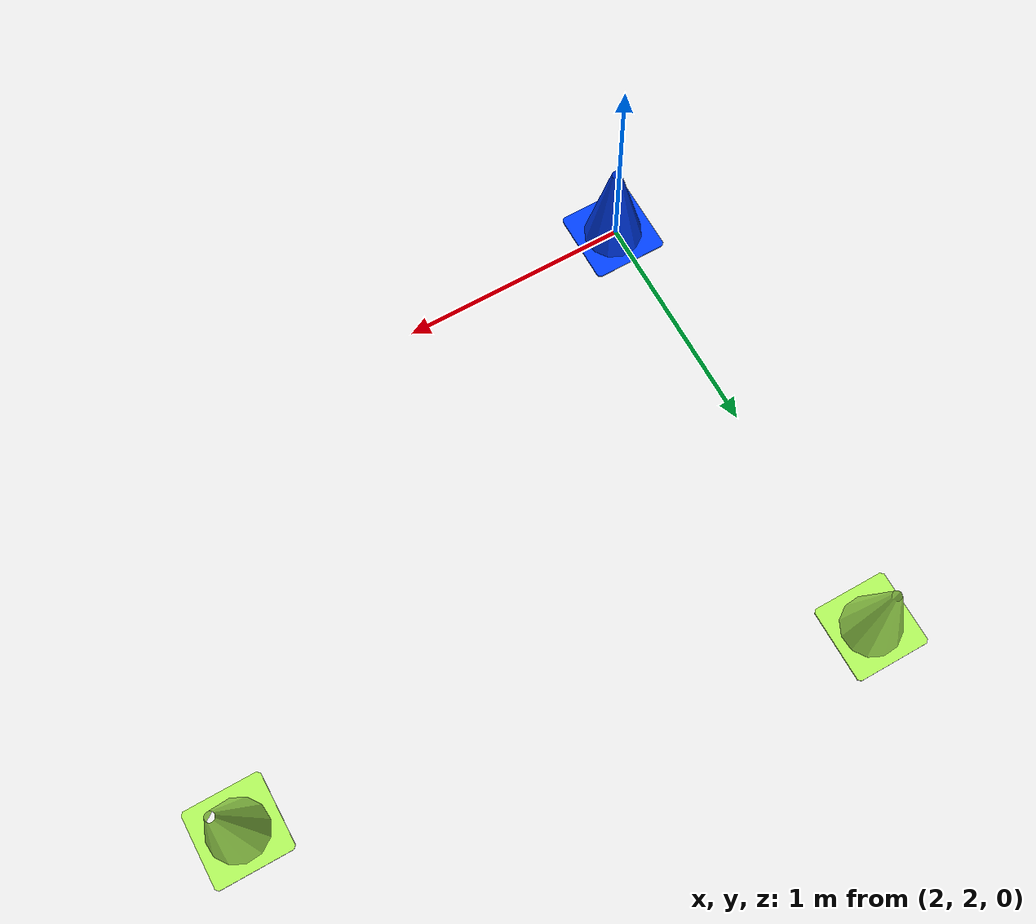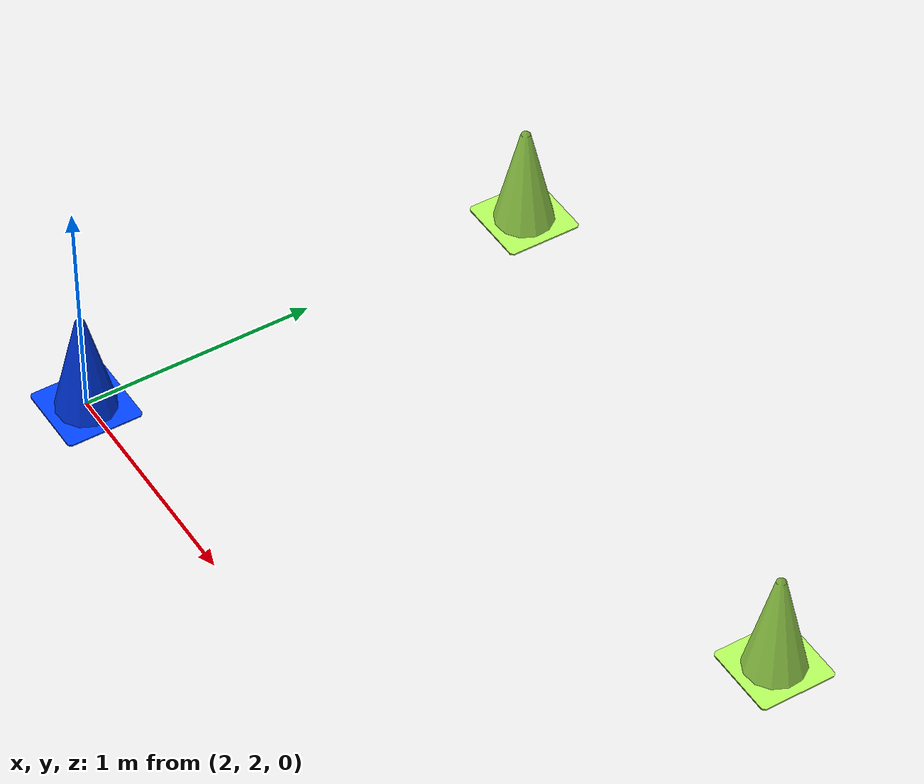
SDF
<sdf version="1.7">
 <world name="obstacles.world">
  <model name="neon_cone_6">
   <link name="link">
    <inertial>
     <pose>0 0.1 0 0 -0 0</pose>
     <mass>1</mass>
     <inertia><ixx>0.1</ixx><iyy>0.1</iyy><izz>0</izz><ixy>0</ixy><ixz>0</ixz><iyz>0</iyz></inertia>
    </inertial>
    <pose>-0.104311 -0.990632 5.9e-05 0 -0 0</pose>
    <visual name="visual">
     <geometry><mesh><scale>1 1 1</scale><uri>file://model.dae</uri></mesh></geometry>
     <material>
      <shader type="pixel"><normal_map>__default__</normal_map></shader>
      <script><name>ModelPreview_1::link::visual_MATERIAL_</name><uri>__default__</uri></script>
      <ambient>0.682 0.953 0.349 0</ambient>
      <diffuse>0.682 0.953 0.349 1</diffuse>
      <specular>0 0 0 1</specular>
      <emissive>0 0 0 1</emissive>
     </material>
    </visual>
    <collision name="collision">
     <geometry>
      <mesh>
       <uri>/home/josh/robot_ws/src/open-source-autonomous-vehicle-controller/car_ros/worlds/model.dae</uri>
       <scale>1 1 1</scale>
      </mesh>
     </geometry>
     <surface>
      <friction>
       <ode><mu>1</mu><mu2>1</mu2><fdir1>0 0 0</fdir1><slip1>0</slip1><slip2>0</slip2></ode>
       <torsional>
        <coefficient>1</coefficient>
        <patch_radius>0</patch_radius>
        <surface_radius>0</surface_radius>
        <use_patch_radius>1</use_patch_radius>
        <ode><slip>0</slip></ode>
       </torsional>
      </friction>
      <bounce><restitution_coefficient>0</restitution_coefficient><threshold>1e+06</threshold></bounce>
      <contact>
       <collide_without_contact>0</collide_without_contact>
       <collide_without_contact_bitmask>1</collide_without_contact_bitmask>
       <collide_bitmask>1</collide_bitmask>
       <ode>
        <soft_cfm>0</soft_cfm>
        <soft_erp>0.2</soft_erp>
        <kp>1e+13</kp>
        <kd>1</kd>
        <max_vel>0.01</max_vel>
        <min_depth>0</min_depth>
       </ode>
       <bullet>
        <split_impulse>1</split_impulse>
        <split_impulse_penetration_threshold>-0.01</split_impulse_penetration_threshold>
        <soft_cfm>0</soft_cfm>
        <soft_erp>0.2</soft_erp>
        <kp>1e+13</kp>
        <kd>1</kd>
       </bullet>
      </contact>
     </surface>
    </collision>
    <static>1</static>
   </link>
   <static>0</static>
   <pose>1.95173 4.8426 0.000192 0 -0.002415 0</pose>
  </model>
  <model name="neon_cone_7">
   <link name="link">
    <inertial>
     <pose>0 0.1 0 0 -0 0</pose>
     <mass>1</mass>
     <inertia><ixx>0.1</ixx><iyy>0.1</iyy><izz>0</izz><ixy>0</ixy><ixz>0</ixz><iyz>0</iyz></inertia>
    </inertial>
    <pose>-0.104311 -0.990632 5.9e-05 0 -0 0</pose>
    <visual name="visual">
     <geometry><mesh><scale>1 1 1</scale><uri>file://model.dae</uri></mesh></geometry>
     <material>
      <shader type="pixel"><normal_map>__default__</normal_map></shader>
      <script><name>ModelPreview_1::link::visual_MATERIAL_</name><uri>__default__</uri></script>
      <ambient>0.682 0.953 0.349 0</ambient>
      <diffuse>0.682 0.953 0.349 1</diffuse>
      <specular>0 0 0 1</specular>
      <emissive>0 0 0 1</emissive>
     </material>
    </visual>
    <collision name="collision">
     <geometry>
      <mesh>
       <uri>/home/josh/robot_ws/src/open-source-autonomous-vehicle-controller/car_ros/worlds/model.dae</uri>
       <scale>1 1 1</scale>
      </mesh>
     </geometry>
     <surface>
      <friction>
       <ode><mu>1</mu><mu2>1</mu2><fdir1>0 0 0</fdir1><slip1>0</slip1><slip2>0</slip2></ode>
       <torsional>
        <coefficient>1</coefficient>
        <patch_radius>0</patch_radius>
        <surface_radius>0</surface_radius>
        <use_patch_radius>1</use_patch_radius>
        <ode><slip>0</slip></ode>
       </torsional>
      </friction>
      <bounce><restitution_coefficient>0</restitution_coefficient><threshold>1e+06</threshold></bounce>
      <contact>
       <collide_without_contact>0</collide_without_contact>
       <collide_without_contact_bitmask>1</collide_without_contact_bitmask>
       <collide_bitmask>1</collide_bitmask>
       <ode>
        <soft_cfm>0</soft_cfm>
        <soft_erp>0.2</soft_erp>
        <kp>1e+13</kp>
        <kd>1</kd>
        <max_vel>0.01</max_vel>
        <min_depth>0</min_depth>
       </ode>
       <bullet>
        <split_impulse>1</split_impulse>
        <split_impulse_penetration_threshold>-0.01</split_impulse_penetration_threshold>
        <soft_cfm>0</soft_cfm>
        <soft_erp>0.2</soft_erp>
        <kp>1e+13</kp>
        <kd>1</kd>
       </bullet>
      </contact>
     </surface>
    </collision>
    <static>1</static>
   </link>
   <static>0</static>
   <pose>4.45001 4.33364 0.000192 0 -0.002415 0</pose>
  </model>
  <model name="blue_cone_clone_2_clone_clone">
   <link name="link">
    <inertial>
     <pose>0 0.1 0 0 -0 0</pose>
     <mass>1</mass>
     <inertia><ixx>0.1</ixx><iyy>0.1</iyy><izz>0</izz><ixy>0</ixy><ixz>0</ixz><iyz>0</iyz></inertia>
    </inertial>
    <pose>-0.104311 -0.990632 5.9e-05 0 -0 0</pose>
    <visual name="visual">
     <geometry><mesh><scale>1 1 1</scale><uri>file://model.dae</uri></mesh></geometry>
     <material>
      <shader type="pixel"><normal_map>__default__</normal_map></shader>
      <script><name>ModelPreview_1::link::visual_MATERIAL_</name><uri>__default__</uri></script>
      <ambient>0 0.251 1 0</ambient>
      <diffuse>0 0.251 1 1</diffuse>
      <specular>0 0 0 1</specular>
      <emissive>0 0 0 1</emissive>
     </material>
    </visual>
    <collision name="collision">
     <geometry>
      <mesh>
       <uri>/home/josh/robot_ws/src/open-source-autonomous-vehicle-controller/car_ros/worlds/model.dae</uri>
       <scale>1 1 1</scale>
      </mesh>
     </geometry>
     <surface>
      <friction>
       <ode><mu>1</mu><mu2>1</mu2><fdir1>0 0 0</fdir1><slip1>0</slip1><slip2>0</slip2></ode>
       <torsional>
        <coefficient>1</coefficient>
        <patch_radius>0</patch_radius>
        <surface_radius>0</surface_radius>
        <use_patch_radius>1</use_patch_radius>
        <ode><slip>0</slip></ode>
       </torsional>
      </friction>
      <bounce><restitution_coefficient>0</restitution_coefficient><threshold>1e+06</threshold></bounce>
      <contact>
       <collide_without_contact>0</collide_without_contact>
       <collide_without_contact_bitmask>1</collide_without_contact_bitmask>
       <collide_bitmask>1</collide_bitmask>
       <ode>
        <soft_cfm>0</soft_cfm>
        <soft_erp>0.2</soft_erp>
        <kp>1e+13</kp>
        <kd>1</kd>
        <max_vel>0.01</max_vel>
        <min_depth>0</min_depth>
       </ode>
       <bullet>
        <split_impulse>1</split_impulse>
        <split_impulse_penetration_threshold>-0.01</split_impulse_penetration_threshold>
        <soft_cfm>0</soft_cfm>
        <soft_erp>0.2</soft_erp>
        <kp>1e+13</kp>
        <kd>1</kd>
       </bullet>
      </contact>
     </surface>
    </collision>
    <static>1</static>
   </link>
   <static>0</static>
   <pose>1.95131 2.82004 -1e-06 -1e-06 -0.000562 0</pose>
  </model>
 </world>
</sdf>
